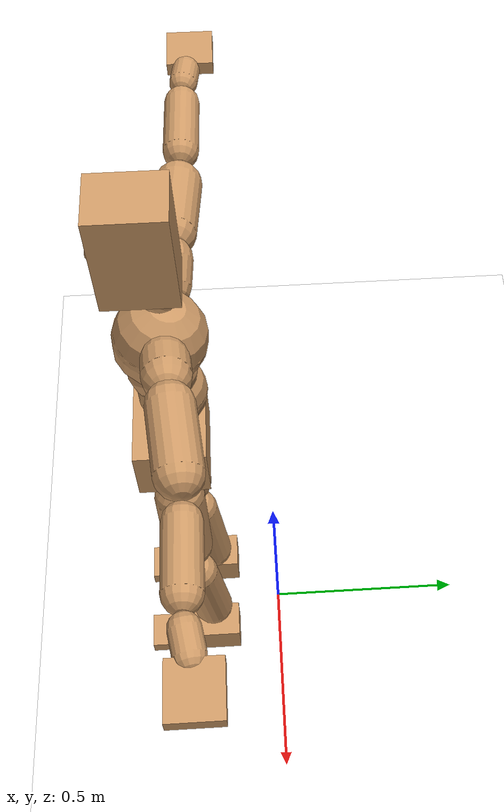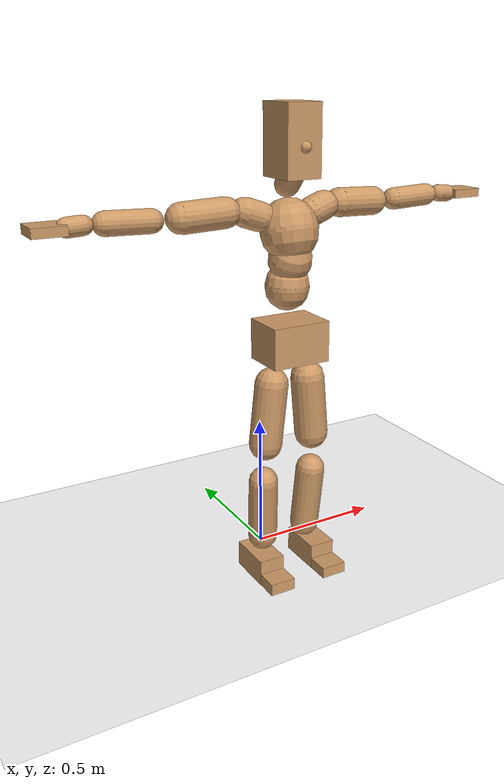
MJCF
<mujoco model="humanoid">
  <option integrator="implicitfast" />

  <visual>
    <global offwidth="1280" offheight="960" />
    <headlight active="1" ambient="0.34 0.34 0.34" diffuse="0.5 0.5 0.5" />
  </visual>

  <default>
    <joint damping="2" stiffness="2" armature="0.01" limited="true" solimplimit="0 .99 .01" />
    <geom condim="1" friction="0.7 0.005 0.0001" solimp=".99 .99 .003" solref="0.015 1" margin="0.001" rgba="0.8 0.6 .4 1" />
    <default class="smplcontact">
      <geom condim="3" friction="1. 0.005 0.0001" solref="0.015 1" solimp="0.98 0.98 0.001" priority="1" />
    </default>
    <default class="stiff_medium">
      <joint stiffness="10" />
    </default>
    <default class="stiff_medium_higher">
      <joint stiffness="50" />
    </default>
    <default class="stiff_high">
      <joint stiffness="100" />
    </default>
  </default>

  <asset>
    <texture type="skybox" builtin="gradient" rgb1="0.99 0.99 0.99" rgb2="0.608 0.828 0.892" width="100" />
    <texture builtin="flat" height="1278" mark="cross" markrgb="1 1 1" name="texgeom" random="0.01" rgb1="0.8 0.6 0.4" rgb2="0.8 0.6 0.4" type="cube" width="127" />
    <texture name="texplane" type="2d" builtin="checker" markrgb="1 1 1" rgb1="0.756 0.772 0.76" rgb2="0.6 0.6 0.6" width="100" height="100" />
    <material name="MatPlane" reflectance="0.5" texture="texplane" texrepeat="1 1" texuniform="true" />
    <material name="geom" texture="texgeom" texuniform="true" />
  </asset>

  <worldbody>
    <light name="tracking_light" pos="0 0 7" dir="0 0 -1" directional="true" cutoff="100" exponent="1" diffuse="1 1 1" specular="0.1 0.1 0.1" mode="trackcom" />
    <camera name="back" pos="0 3 2.4" xyaxes="-1 0 0 0 -1 2" mode="trackcom" />
    <camera name="side" pos="-3 0 2.4" xyaxes="0 -1 0 1 0 2" mode="trackcom" />
    <camera name="front_side" pos="-2.8 -2.8 0.8" xyaxes="0.5 -0.5 0 0.1 0.1 1" mode="trackcom" />
    <geom condim="3" name="floor" pos="0 0 0" rgba="1 1 1 1" size="100 100 .2" type="plane" material="MatPlane" />
    <body name="Pelvis" pos="-0.0018 -0.2233 0.892684" euler="90 0 0">
      <site name="Pelvis" size="0.01" />
      <freejoint name="Pelvis" />
      <geom type="box" pos="-0.0000 -0.0121 -0.0055" size="0.10489 0.0708426 0.0814396" quat="1.0000 0.0000 0.0000 0.0000" density="3165.830099" name="Pelvis" />
      <body name="L_Hip" pos="0.0661988 -0.0870585 -0.006477">
        <joint name="L_Hip_x" type="hinge" pos="0 0 0" axis="1 0 0" stiffness="8.4340866" range="-160.0 22.92" class="stiff_medium" damping="12.356114505369938" armature="0.008045319107284551"/>
        <joint name="L_Hip_y" type="hinge" pos="0 0 0" axis="0 1 0" stiffness="8.4363694" range="-70.0 70.0" class="stiff_medium" damping="8.287729316405043" armature="0.008141708117001087"/>
        <joint name="L_Hip_z" type="hinge" pos="0 0 0" axis="0 0 1" stiffness="8.4359106" range="-28.65 90.0" class="stiff_medium" damping="8.238227068442441" armature="0.008045175968462461"/>
        <geom type="capsule" density="2040.816327" fromto="0.00657225 -0.0714375 -0.00085725 0.0260985 -0.285941 -0.003429" size="0.0591938" name="L_Hip" />
        <body name="L_Knee" pos="0.0326707 -0.357378 -0.00428625">
          <joint name="L_Knee_x" type="hinge" pos="0 0 0" axis="1 0 0" range="-5.16 171.89" damping="6.600538908722502" armature="0.008061896664004807" stiffness="1.6887742000000001"/>
          <joint name="L_Knee_y" type="hinge" pos="0 0 0" axis="0 1 0" range="-4.58 6.88" damping="6.637561315160122" armature="0.008158376957981085" stiffness="1.68757602"/>
          <joint name="L_Knee_z" type="hinge" pos="0 0 0" axis="0 0 1" range="-6.88 4.58" damping="6.601728982443046" armature="0.008061200309060603" stiffness="1.6895291600000002"/>
          <geom type="capsule" density="1234.567901" fromto="-0.00257175 -0.075819 -0.00828675 -0.0103823 -0.303276 -0.0333375" size="0.0520713" name="L_Knee" />
          <body name="L_Ankle" pos="-0.012954 -0.379095 -0.0416243">
            <joint name="L_Ankle_x" type="hinge" pos="0 0 0" axis="1 0 0" range="-45.84 45.84" class="stiff_medium" damping="4.991300063802697" armature="0.008148128866815221" stiffness="8.4931143"/>
            <joint name="L_Ankle_y" type="hinge" pos="0 0 0" axis="0 1 0" range="-74.48 22.92" class="stiff_medium" damping="2.496290999561224" armature="0.008152308597395637" stiffness="8.4931208"/>
            <joint name="L_Ankle_z" type="hinge" pos="0 0 0" axis="0 0 1" range="-4.58 4.58" class="stiff_medium" damping="5.0009599634312565" armature="0.008179683378336884" stiffness="8.493129799999998"/>
            <geom type="box" pos="0.0221933 -0.0227648 0.0230505" size="0.0464888 0.04466 0.0818125" quat="1.0000 0.0000 0.0000 0.0000" density="449.071558" name="L_Ankle" class="smplcontact" />
            <body name="L_Toe" pos="0.025146 -0.0531495 0.113633">
              <joint name="L_Toe_x" type="hinge" pos="0 0 0" axis="1 0 0" range="-91.67 22.92" armature="0.008195542067602996" damping="1.6686018013090576" stiffness="1.6986258799999998"/>
              <joint name="L_Toe_y" type="hinge" pos="0 0 0" axis="0 1 0" range="-4.58 4.58" armature="0.00821471382894358" damping="1.6705521768522544" stiffness="1.6986255599999998"/>
              <joint name="L_Toe_z" type="hinge" pos="0 0 0" axis="0 0 1" range="-4.58 4.58" armature="0.008253479322451348" damping="1.6744884628219805" stiffness="1.6986239999999997"/>
              <geom type="box" pos="-0.0028575 0.00523875 0.023622" size="0.0460075 0.01925 0.04774" quat="1.0000 0.0000 0.0000 0.0000" density="423.206892" name="L_Toe" class="smplcontact" />
            </body>
          </body>
        </body>
      </body>
      <body name="R_Hip" pos="-0.0644842 -0.0862012 -0.00409575">
        <joint name="R_Hip_x" type="hinge" pos="0 0 0" axis="1 0 0" stiffness="8.4340866" range="-160.0 22.92" class="stiff_medium" damping="12.356114505369938" armature="0.008045319107284551"/>
        <joint name="R_Hip_y" type="hinge" pos="0 0 0" axis="0 1 0" stiffness="8.4363694" range="-70.0 70.0" class="stiff_medium" damping="8.287729316405043" armature="0.008141708117001087"/>
        <joint name="R_Hip_z" type="hinge" pos="0 0 0" axis="0 0 1" stiffness="8.4359106" range="-90.0 28.65" class="stiff_medium" damping="8.238227068442441" armature="0.008045175968462461"/>
        <geom type="capsule" density="2040.816327" fromto="-0.00733425 -0.0728662 -0.0017145 -0.0291465 -0.29156 -0.00676275" size="0.0583275" name="R_Hip" />
        <body name="R_Knee" pos="-0.0364807 -0.364426 -0.00847725">
          <joint name="R_Knee_x" type="hinge" pos="0 0 0" axis="1 0 0" range="-5.16 171.89" damping="6.600538908722502" armature="0.008061896664004807" stiffness="1.6887742000000001"/>
          <joint name="R_Knee_y" type="hinge" pos="0 0 0" axis="0 1 0" range="-6.88 4.58" damping="6.637561315160122" armature="0.008158376957981085" stiffness="1.68757602"/>
          <joint name="R_Knee_z" type="hinge" pos="0 0 0" axis="0 0 1" range="-4.58 6.88" damping="6.601728982443046" armature="0.008061200309060603" stiffness="1.6895291600000002"/>
          <geom type="capsule" density="1234.567901" fromto="0.003048 -0.0759142 -0.00809625 0.0120015 -0.303562 -0.0321945" size="0.0520713" name="R_Knee" />
          <body name="R_Ankle" pos="0.0150495 -0.379476 -0.0402908">
            <joint name="R_Ankle_x" type="hinge" pos="0 0 0" axis="1 0 0" range="-45.84 45.84" class="stiff_medium" damping="4.991300063802697" armature="0.008148128866815221" stiffness="8.4931143"/>
            <joint name="R_Ankle_y" type="hinge" pos="0 0 0" axis="0 1 0" range="-22.92 74.48" class="stiff_medium" damping="2.496290999561224" armature="0.008152308597395637" stiffness="8.4931208"/>
            <joint name="R_Ankle_z" type="hinge" pos="0 0 0" axis="0 0 1" range="-4.58 4.58" class="stiff_medium" damping="5.0009599634312565" armature="0.008179683378336884" stiffness="8.493129799999998"/>
            <geom type="box" pos="-0.020193 -0.0165735 0.024384" size="0.0464888 0.0460075 0.0832562" quat="1.0000 0.0000 0.0000 0.0000" density="434.700981" name="R_Ankle" class="smplcontact" />
            <body name="R_Toe" pos="-0.0241935 -0.0458152 0.117443">
              <joint name="R_Toe_x" type="hinge" pos="0 0 0" axis="1 0 0" range="-91.67 22.92" armature="0.008195542067602996" damping="1.6686018013090576" stiffness="1.6986258799999998"/>
              <joint name="R_Toe_y" type="hinge" pos="0 0 0" axis="0 1 0" range="-4.58 4.58" armature="0.00821471382894358" damping="1.6705521768522544" stiffness="1.6986255599999998"/>
              <joint name="R_Toe_z" type="hinge" pos="0 0 0" axis="0 0 1" range="-4.58 4.58" armature="0.008253479322451348" damping="1.6744884628219805" stiffness="1.6986239999999997"/>
              <geom type="box" pos="0.0040005 0.00428625 0.0216218" size="0.0461037 0.02079 0.0474513" quat="1.0000 0.0000 0.0000 0.0000" density="407.384095" name="R_Toe" class="smplcontact" />
            </body>
          </body>
        </body>
      </body>
      <body name="Torso" pos="-0.002422 0.105599 -0.025867">
        <joint name="Torso_x" type="hinge" pos="0 0 0" axis="1 0 0" range="-25.78 57.3" class="stiff_medium" damping="13.872494446854263" armature="0.009200027657435314" stiffness="9.2968852"/>
        <joint name="Torso_y" type="hinge" pos="0 0 0" axis="0 1 0" range="-57.3 57.3" class="stiff_high" damping="17.50582131496185" armature="0.008185325664606393" stiffness="93.59853"/>
        <joint name="Torso_z" type="hinge" pos="0 0 0" axis="0 0 1" range="-34.38 34.38" class="stiff_high" damping="18.134049490190318" armature="0.008850569581965267" stiffness="92.88773673469389"/>
        <geom type="capsule" density="2040.816327" fromto="0.002422 0.058903 0.0004844 0.0029064 0.0719818 0.00058128" size="0.0754543" name="Torso" />
        <body name="Spine" pos="0.0053284 0.130982 0.00106568">
          <joint name="Spine_x" type="hinge" pos="0 0 0" axis="1 0 0" stiffness="9.341418200000001" range="-25.78 57.3" class="stiff_medium" damping="14.092177312663722" armature="0.009448456429193975"/>
          <joint name="Spine_y" type="hinge" pos="0 0 0" axis="0 1 0" stiffness="9.357664599999998" range="-57.3 57.3" class="stiff_high" damping="6.998764318163698" armature="0.00817890735746472"/>
          <joint name="Spine_z" type="hinge" pos="0 0 0" axis="0 0 1" stiffness="18.777371999999996" range="-34.38 34.38" class="stiff_high" damping="10.874341612360176" armature="0.008746587345064121"/>
          <geom type="capsule" density="2040.816327" fromto="0.00067816 0.0230574 0.0110443 0.00077504 0.0281921 0.0135632" size="0.0740806" name="Spine" />
          <body name="Chest" pos="0.0014532 0.0512495 0.0246075">
            <joint name="Chest_x" type="hinge" pos="0 0 0" axis="1 0 0" stiffness="9.46365693877551" range="-25.78 57.3" class="stiff_medium" damping="14.282000640629558" armature="0.009579362096893371"/>
            <joint name="Chest_y" type="hinge" pos="0 0 0" axis="0 1 0" stiffness="9.048901874999999" range="-57.3 57.3" class="stiff_high" damping="6.8791551998397615" armature="0.008171360341079098"/>
            <joint name="Chest_z" type="hinge" pos="0 0 0" axis="0 0 1" stiffness="18.958688000000002" range="-34.38 34.38" class="stiff_high" damping="10.884115087521343" armature="0.008678516123995039"/>
            <geom type="capsule" density="2040.816327" fromto="-0.00087192 0.0660722 -0.0167602 -0.0009688 0.080701 -0.0205386" size="0.0983162" name="Chest" />
            <body name="Neck" pos="-0.00271264 0.207226 -0.0415615">
              <joint name="Neck_x" type="hinge" pos="0 0 0" axis="1 0 0" range="-28.65 57.3" class="stiff_medium_higher" damping="10.630712888705476" armature="0.010734671960729114" stiffness="52.63880300000001"/>
              <joint name="Neck_y" type="hinge" pos="0 0 0" axis="0 1 0" range="-40.11 40.11" class="stiff_medium_higher" damping="10.666035229834442" armature="0.010783691967319056" stiffness="52.748311"/>
              <joint name="Neck_z" type="hinge" pos="0 0 0" axis="0 0 1" range="-40.11 40.11" class="stiff_medium_higher" damping="10.662768622192512" armature="0.010738995716384911" stiffness="52.935413"/>
              <geom type="capsule" density="1000" fromto="0.0009688 0.0125944 0.00997864 0.00397208 0.0503776 0.0398177" size="0.0427803" name="Neck" />
              <body name="Head" pos="0.00523276 0.0654095 0.0516232">
                <joint name="Head_x" type="hinge" pos="0 0 0" axis="1 0 0" range="-28.65 57.3" class="stiff_medium_higher" damping="2.1469139032616615" armature="0.01082861521230282" stiffness="53.206703"/>
                <joint name="Head_y" type="hinge" pos="0 0 0" axis="0 1 0" range="-40.11 40.11" class="stiff_medium_higher" damping="2.1602666047260337" armature="0.010963727428355257" stiffness="53.206720000000004"/>
                <joint name="Head_z" type="hinge" pos="0 0 0" axis="0 0 1" range="-40.11 40.11" class="stiff_medium_higher" damping="2.1462506369569145" armature="0.010821926084116196" stiffness="53.206700000000005"/>
                <geom type="box" pos="-0.00422646 0.0881519 -0.0116731" size="0.0617393 0.11757 0.0774288" quat="1.0000 0.0000 0.0000 0.0000" density="1018.069894" name="Head" />
                <geom type="capsule" name="nose" size="0.020376 0.010188" pos="0 0.070441 0.050315" quat="1 0 0 0" mass="0" contype="0" conaffinity="0" />
              </body>
            </body>
            <body name="L_Thorax" pos="0.0753564 0.116382 -0.0326098">
              <joint name="L_Thorax_x" type="hinge" pos="0 0 0" axis="1 0 0" range="-10.89 4.58" class="stiff_medium_higher" damping="16.661022752210723" armature="0.0081706982835257" stiffness="42.4672515"/>
              <joint name="L_Thorax_y" type="hinge" pos="0 0 0" axis="0 1 0" range="-28.65 17.19" class="stiff_medium_higher" damping="16.613921923367588" armature="0.008125833608296513" stiffness="42.460628500000006"/>
              <joint name="L_Thorax_z" type="hinge" pos="0 0 0" axis="0 0 1" range="-31.51 40.11" class="stiff_medium_higher" damping="16.6139046129572" armature="0.008125793040842768" stiffness="42.460752"/>
              <geom type="capsule" density="1000" fromto="0.0174047 0.00583343 -0.00172134 0.0696186 0.0233337 -0.00678973" size="0.0501463" name="L_Thorax" />
              <body name="L_Shoulder" pos="0.0870233 0.0291671 -0.00851107">
                <joint name="L_Shoulder_x" type="hinge" pos="0 0 0" axis="1 0 0" range="-97.4 97.4" class="stiff_medium" damping="5.003905655075881" armature="0.008188364639527582" stiffness="8.494123100000001"/>
                <joint name="L_Shoulder_y" type="hinge" pos="0 0 0" axis="0 1 0" range="-108.86 80.21" class="stiff_medium" damping="4.984855692442509" armature="0.008127449096473073" stiffness="8.492751599999998"/>
                <joint name="L_Shoulder_z" type="hinge" pos="0 0 0" axis="0 0 1" range="-97.4 85.94" class="stiff_medium" damping="4.984827776241941" armature="0.0081273967280166" stiffness="8.4927112"/>
                <geom type="capsule" density="1000" fromto="0.049632 -0.00248638 -0.00525965 0.198624 -0.00975426 -0.0210386" size="0.0497613" name="L_Shoulder" />
                <body name="L_Elbow" pos="0.248255 -0.0122406 -0.0262983">
                  <joint name="L_Elbow_x" type="hinge" pos="0 0 0" axis="1 0 0" range="-17.19 4.58" damping="4.178116076155648" armature="0.008216413497749554" stiffness="1.69968602"/>
                  <joint name="L_Elbow_y" type="hinge" pos="0 0 0" axis="0 1 0" range="-180.0 17.19" damping="4.1574498651536524" armature="0.008135342992313391" stiffness="1.6996839000000001"/>
                  <joint name="L_Elbow_z" type="hinge" pos="0 0 0" axis="0 0 1" range="-100.84 4.58" damping="4.157416505383548" armature="0.008135068848580012" stiffness="1.6997138999999999"/>
                  <geom type="capsule" density="1000" fromto="0.0476237 0.00172134 -0.00019126 0.190686 0.00688536 -0.00086067" size="0.0389813" name="L_Elbow" />
                  <body name="L_Wrist" pos="0.23831 0.0086067 -0.00114756">
                    <joint name="L_Wrist_x" type="hinge" pos="0 0 0" axis="1 0 0" range="-180.0 22.92" armature="0.008224348576593515" damping="1.6738861642260372" stiffness="1.7034144799999997"/>
                    <joint name="L_Wrist_y" type="hinge" pos="0 0 0" axis="0 1 0" range="-17.19 17.19" armature="0.008161950649460155" damping="1.667383500398282" stiffness="1.7031270199999997"/>
                    <joint name="L_Wrist_z" type="hinge" pos="0 0 0" axis="0 0 1" range="-22.92 22.92" armature="0.008158476475866303" damping="1.667073905970243" stiffness="1.7032196000000002"/>
                    <geom type="capsule" density="1000" fromto="0.0160658 -0.00153008 -0.0028689 0.0642634 -0.00621595 -0.0114756" size="0.0306075" name="L_Wrist" class="smplcontact" />
                    <body name="L_Hand" pos="0.0803292 -0.00784166 -0.0142489">
                      <joint name="L_Hand_x" type="hinge" pos="0 0 0" axis="1 0 0" range="-17.19 17.19" armature="0.00825583573912905" damping="1.6780658739066683" stiffness="1.7054028"/>
                      <joint name="L_Hand_y" type="hinge" pos="0 0 0" axis="0 1 0" range="-51.57 51.57" armature="0.008204576061488486" damping="1.6728483183092244" stiffness="1.70540286"/>
                      <joint name="L_Hand_z" type="hinge" pos="0 0 0" axis="0 0 1" range="-91.67 91.67" armature="0.008190912192581713" damping="1.6714548289418671" stiffness="1.7054030000000002"/>
                      <geom type="box" pos="0.0471456 0.0009563 -0.00554654" size="0.0563063 0.0152075 0.0517825" quat="1.0000 0.0000 0.0000 0.0000" density="400.552564" name="L_Hand" class="smplcontact" />
                    </body>
                  </body>
                </body>
              </body>
            </body>
            <body name="R_Thorax" pos="-0.0782253 0.113608 -0.0369132">
              <joint name="R_Thorax_x" type="hinge" pos="0 0 0" axis="1 0 0" range="-10.89 4.58" class="stiff_medium_higher" damping="16.661022752210723" armature="0.0081706982835257" stiffness="42.4672515"/>
              <joint name="R_Thorax_y" type="hinge" pos="0 0 0" axis="0 1 0" range="-17.19 28.65" class="stiff_medium_higher" damping="16.613921923367588" armature="0.008125833608296513" stiffness="42.460628500000006"/>
              <joint name="R_Thorax_z" type="hinge" pos="0 0 0" axis="0 0 1" range="-40.11 31.51" class="stiff_medium_higher" damping="16.6139046129572" armature="0.008125793040842768" stiffness="42.460752"/>
              <geom type="capsule" density="1000" fromto="-0.018361 0.00621595 -0.00172134 -0.0734438 0.0248638 -0.00698099" size="0.0491837" name="R_Thorax" />
              <body name="R_Shoulder" pos="-0.0918048 0.0311754 -0.00870233">
                <joint name="R_Shoulder_x" type="hinge" pos="0 0 0" axis="1 0 0" range="-97.4 97.4" class="stiff_medium" damping="5.003905655075881" armature="0.008188364639527582" stiffness="8.494123100000001"/>
                <joint name="R_Shoulder_y" type="hinge" pos="0 0 0" axis="0 1 0" range="-80.21 108.86" class="stiff_medium" damping="4.984855692442509" armature="0.008127449096473073" stiffness="8.492751599999998"/>
                <joint name="R_Shoulder_z" type="hinge" pos="0 0 0" axis="0 0 1" range="-85.94 97.4" class="stiff_medium" damping="4.984827776241941" armature="0.0081273967280166" stiffness="8.4927112"/>
                <geom type="capsule" density="1000" fromto="-0.0484844 -0.00258201 -0.00411209 -0.194129 -0.0102324 -0.0163527" size="0.0511088" name="R_Shoulder" />
                <body name="R_Elbow" pos="-0.242613 -0.0127188 -0.0204648">
                  <joint name="R_Elbow_x" type="hinge" pos="0 0 0" axis="1 0 0" range="-17.19 4.58" damping="4.178116076155648" armature="0.008216413497749554" stiffness="1.69968602"/>
                  <joint name="R_Elbow_y" type="hinge" pos="0 0 0" axis="0 1 0" range="-17.19 180.0" damping="4.1574498651536524" armature="0.008135342992313391" stiffness="1.6996839000000001"/>
                  <joint name="R_Elbow_z" type="hinge" pos="0 0 0" axis="0 0 1" range="-4.58 100.84" damping="4.157416505383548" armature="0.008135068848580012" stiffness="1.6997138999999999"/>
                  <geom type="capsule" density="1000" fromto="-0.0488669 0.00153008 -0.00105193 -0.195276 0.00592906 -0.00420772" size="0.03927" name="R_Elbow" />
                  <body name="R_Wrist" pos="-0.244143 0.00745914 -0.00535528">
                    <joint name="R_Wrist_x" type="hinge" pos="0 0 0" axis="1 0 0" range="-180.0 22.92" armature="0.008224348576593515" damping="1.6738861642260372" stiffness="1.7034144799999997"/>
                    <joint name="R_Wrist_y" type="hinge" pos="0 0 0" axis="0 1 0" range="-17.19 17.19" armature="0.008161950649460155" damping="1.667383500398282" stiffness="1.7031270199999997"/>
                    <joint name="R_Wrist_z" type="hinge" pos="0 0 0" axis="0 0 1" range="-22.92 22.92" armature="0.008158476475866303" damping="1.667073905970243" stiffness="1.7032196000000002"/>
                    <geom type="capsule" density="1000" fromto="-0.0161615 -0.00114756 -0.00200823 -0.0647415 -0.00468587 -0.00793729" size="0.0313775" name="R_Wrist" class="smplcontact" />
                    <body name="R_Hand" pos="-0.080903 -0.00583343 -0.00984989">
                      <joint name="R_Hand_x" type="hinge" pos="0 0 0" axis="1 0 0" range="-17.19 17.19" armature="0.00825583573912905" damping="1.6780658739066683" stiffness="1.7054028"/>
                      <joint name="R_Hand_y" type="hinge" pos="0 0 0" axis="0 1 0" range="-51.57 51.57" armature="0.008204576061488486" damping="1.6728483183092244" stiffness="1.70540286"/>
                      <joint name="R_Hand_z" type="hinge" pos="0 0 0" axis="0 0 1" range="-91.67 91.67" armature="0.008190912192581713" damping="1.6714548289418671" stiffness="1.7054030000000002"/>
                      <geom type="box" pos="-0.0441811 -0.00086067 -0.00755477" size="0.0547663 0.015785 0.0525525" quat="1.0000 0.0000 0.0000 0.0000" density="403.679611" name="R_Hand" class="smplcontact" />
                    </body>
                  </body>
                </body>
              </body>
            </body>
          </body>
        </body>
      </body>
    </body>
  </worldbody>
  <actuator>
    <general name="L_Hip_x" joint="L_Hip_x" biastype="affine" gainprm="242.33666433803688" biasprm="-181.60676769876503 -151.81355880000004 -1.647481934049325" ctrllimited="true" ctrlrange="-1 1" forcerange="-303.6271176000001 303.6271176000001" />
    <general name="L_Hip_y" joint="L_Hip_y" biastype="affine" gainprm="185.5254529100681" biasprm="0.0 -151.8546492 -1.6575458632810085" ctrllimited="true" ctrlrange="-1 1" forcerange="-303.7092984 303.7092984" />
    <general name="L_Hip_z" joint="L_Hip_z" biastype="affine" gainprm="157.22427045700883" biasprm="81.29548244869356 -151.84639080000002 -1.6476454136884884" ctrllimited="true" ctrlrange="-1 1" forcerange="-303.69278160000005 303.69278160000005" />
    <general name="L_Knee_x" joint="L_Knee_x" biastype="affine" gainprm="234.83206545567378" biasprm="221.14402865532045 -151.989678 -1.6501347271806255" ctrllimited="true" ctrlrange="-1 1" forcerange="-303.979356 303.979356" />
    <general name="L_Knee_y" joint="L_Knee_y" biastype="affine" gainprm="15.189302962800054" biasprm="3.0484639454136238 -151.88184180000002 -1.6593903287900305" ctrllimited="true" ctrlrange="-1 1" forcerange="-303.76368360000004 303.76368360000004" />
    <general name="L_Knee_z" joint="L_Knee_z" biastype="affine" gainprm="15.206882517639169" biasprm="-3.0519921283219973 -152.0576244 -1.6504322456107614" ctrllimited="true" ctrlrange="-1 1" forcerange="-304.1152488 304.1152488" />
    <general name="L_Ankle_x" joint="L_Ankle_x" biastype="affine" gainprm="61.154927385322544" biasprm="0.0 -76.4380287 -1.6637666879342325" ctrllimited="true" ctrlrange="-1 1" forcerange="-152.8760574 152.8760574" />
    <general name="L_Ankle_y" joint="L_Ankle_y" biastype="affine" gainprm="64.97048959409018" biasprm="-34.39300249970524 -76.4380872 -1.6641939997074826" ctrllimited="true" ctrlrange="-1 1" forcerange="-152.8761744 152.8761744" />
    <general name="L_Ankle_z" joint="L_Ankle_z" biastype="affine" gainprm="6.11016750851718" biasprm="0.0 -76.43816819999999 -1.6669866544770855" ctrllimited="true" ctrlrange="-1 1" forcerange="-152.87633639999999 152.87633639999999" />
    <general name="L_Toe_x" joint="L_Toe_x" biastype="affine" gainprm="61.14969972274518" biasprm="-36.68768527741279 -61.15053167999999 -0.667440720523623" ctrllimited="true" ctrlrange="-1 1" forcerange="-122.30106335999999 122.30106335999999" />
    <general name="L_Toe_y" joint="L_Toe_y" biastype="affine" gainprm="4.888132855734196" biasprm="0.0 -61.15052015999999 -0.6682208707409019" ctrllimited="true" ctrlrange="-1 1" forcerange="-122.30104031999998 122.30104031999998" />
    <general name="L_Toe_z" joint="L_Toe_z" biastype="affine" gainprm="4.888128366523958" biasprm="0.0 -61.150463999999985 -0.6697953851287922" ctrllimited="true" ctrlrange="-1 1" forcerange="-122.30092799999997 122.30092799999997" />
    <general name="R_Hip_x" joint="R_Hip_x" biastype="affine" gainprm="242.33666433803688" biasprm="-181.60676769876503 -151.81355880000004 -1.647481934049325" ctrllimited="true" ctrlrange="-1 1" forcerange="-303.6271176000001 303.6271176000001" />
    <general name="R_Hip_y" joint="R_Hip_y" biastype="affine" gainprm="185.5254529100681" biasprm="0.0 -151.8546492 -1.6575458632810085" ctrllimited="true" ctrlrange="-1 1" forcerange="-303.7092984 303.7092984" />
    <general name="R_Hip_z" joint="R_Hip_z" biastype="affine" gainprm="157.22427045700883" biasprm="-81.29548244869356 -151.84639080000002 -1.6476454136884884" ctrllimited="true" ctrlrange="-1 1" forcerange="-303.69278160000005 303.69278160000005" />
    <general name="R_Knee_x" joint="R_Knee_x" biastype="affine" gainprm="234.83206545567378" biasprm="221.14402865532045 -151.989678 -1.6501347271806255" ctrllimited="true" ctrlrange="-1 1" forcerange="-303.979356 303.979356" />
    <general name="R_Knee_y" joint="R_Knee_y" biastype="affine" gainprm="15.189302962800054" biasprm="-3.0484639454136238 -151.88184180000002 -1.6593903287900305" ctrllimited="true" ctrlrange="-1 1" forcerange="-303.76368360000004 303.76368360000004" />
    <general name="R_Knee_z" joint="R_Knee_z" biastype="affine" gainprm="15.206882517639169" biasprm="3.0519921283219973 -152.0576244 -1.6504322456107614" ctrllimited="true" ctrlrange="-1 1" forcerange="-304.1152488 304.1152488" />
    <general name="R_Ankle_x" joint="R_Ankle_x" biastype="affine" gainprm="61.154927385322544" biasprm="0.0 -76.4380287 -1.6637666879342325" ctrllimited="true" ctrlrange="-1 1" forcerange="-152.8760574 152.8760574" />
    <general name="R_Ankle_y" joint="R_Ankle_y" biastype="affine" gainprm="64.97048959409018" biasprm="34.39300249970524 -76.4380872 -1.6641939997074826" ctrllimited="true" ctrlrange="-1 1" forcerange="-152.8761744 152.8761744" />
    <general name="R_Ankle_z" joint="R_Ankle_z" biastype="affine" gainprm="6.11016750851718" biasprm="0.0 -76.43816819999999 -1.6669866544770855" ctrllimited="true" ctrlrange="-1 1" forcerange="-152.87633639999999 152.87633639999999" />
    <general name="R_Toe_x" joint="R_Toe_x" biastype="affine" gainprm="61.14969972274518" biasprm="-36.68768527741279 -61.15053167999999 -0.667440720523623" ctrllimited="true" ctrlrange="-1 1" forcerange="-122.30106335999999 122.30106335999999" />
    <general name="R_Toe_y" joint="R_Toe_y" biastype="affine" gainprm="4.888132855734196" biasprm="0.0 -61.15052015999999 -0.6682208707409019" ctrllimited="true" ctrlrange="-1 1" forcerange="-122.30104031999998 122.30104031999998" />
    <general name="R_Toe_z" joint="R_Toe_z" biastype="affine" gainprm="4.888128366523958" biasprm="0.0 -61.150463999999985 -0.6697953851287922" ctrllimited="true" ctrlrange="-1 1" forcerange="-122.30092799999997 122.30092799999997" />
    <general name="Torso_x" joint="Torso_x" biastype="affine" gainprm="161.76798269889494" biasprm="61.37369781739489 -223.12524480000002 -3.69933185249447" ctrllimited="true" ctrlrange="-1 1" forcerange="-334.6878672 334.6878672" />
    <general name="Torso_y" joint="Torso_y" biastype="affine" gainprm="224.65301903539014" biasprm="0.0 -224.636472 -3.50116426299237" ctrllimited="true" ctrlrange="-1 1" forcerange="-336.954708 336.954708" />
    <general name="Torso_z" joint="Torso_z" biastype="affine" gainprm="133.7681937236418" biasprm="0.0 -222.93056816326532 -3.6268098980380636" ctrllimited="true" ctrlrange="-1 1" forcerange="-334.395852244898 334.395852244898" />
    <general name="Spine_x" joint="Spine_x" biastype="affine" gainprm="162.5428673423592" biasprm="61.66768390263795 -224.19403680000002 -3.757913950043659" ctrllimited="true" ctrlrange="-1 1" forcerange="-336.2910552 336.2910552" />
    <general name="Spine_y" joint="Spine_y" biastype="affine" gainprm="224.6004935665759" biasprm="0.0 -224.58395039999996 -3.499382159081849" ctrllimited="true" ctrlrange="-1 1" forcerange="-336.87592559999996 336.87592559999996" />
    <general name="Spine_z" joint="Spine_z" biastype="affine" gainprm="135.20703720509078" biasprm="0.0 -225.32846399999997 -3.6247805374533923" ctrllimited="true" ctrlrange="-1 1" forcerange="-337.99269599999997 337.99269599999997" />
    <general name="Chest_x" joint="Chest_x" biastype="affine" gainprm="164.66985006334312" biasprm="62.474647014884134 -227.12776653061223 -3.8085335041678823" ctrllimited="true" ctrlrange="-1 1" forcerange="-340.69164979591835 340.69164979591835" />
    <general name="Chest_y" joint="Chest_y" biastype="affine" gainprm="217.18964231315945" biasprm="0.0 -217.173645 -3.4395775999198808" ctrllimited="true" ctrlrange="-1 1" forcerange="-325.7604675 325.7604675" />
    <general name="Chest_z" joint="Chest_z" biastype="affine" gainprm="136.51260856821227" biasprm="0.0 -227.50425600000005 -3.628038362507114" ctrllimited="true" ctrlrange="-1 1" forcerange="-341.2563840000001 341.2563840000001" />
    <general name="Neck_x" joint="Neck_x" biastype="affine" gainprm="28.42704744167253" biasprm="9.475682480557511 -37.899938160000005 -0.8504570310964381" ctrllimited="true" ctrlrange="-1 1" forcerange="-75.79987632000001 75.79987632000001" />
    <general name="Neck_y" joint="Neck_y" biastype="affine" gainprm="26.58710704308297" biasprm="0.0 -37.978783920000005 -0.8532828183867555" ctrllimited="true" ctrlrange="-1 1" forcerange="-75.95756784000001 75.95756784000001" />
    <general name="Neck_z" joint="Neck_z" biastype="affine" gainprm="26.6814133973087" biasprm="0.0 -38.11349736 -0.8530214897754012" ctrllimited="true" ctrlrange="-1 1" forcerange="-76.22699472 76.22699472" />
    <general name="Head_x" joint="Head_x" biastype="affine" gainprm="19.155824020744795" biasprm="6.385274673581598 -25.53921744 -0.8587655613046646" ctrllimited="true" ctrlrange="-1 1" forcerange="-51.07843488 51.07843488" />
    <general name="Head_y" joint="Head_y" biastype="affine" gainprm="17.878774798449232" biasprm="0.0 -25.5392256 -0.8641066418904135" ctrllimited="true" ctrlrange="-1 1" forcerange="-51.0784512 51.0784512" />
    <general name="Head_z" joint="Head_z" biastype="affine" gainprm="17.878768077954227" biasprm="0.0 -25.539216000000003 -0.8585002547827658" ctrllimited="true" ctrlrange="-1 1" forcerange="-51.07843200000001 51.07843200000001" />
    <general name="L_Thorax_x" joint="L_Thorax_x" biastype="affine" gainprm="13.759513589757402" biasprm="-5.612316144238477 -101.9214036 -1.332881820176858" ctrllimited="true" ctrlrange="-1 1" forcerange="-203.8428072 203.8428072" />
    <general name="L_Thorax_y" joint="L_Thorax_y" biastype="affine" gainprm="40.76520596067109" biasprm="-10.191301490167772 -101.9055084 -1.3291137538694073" ctrllimited="true" ctrlrange="-1 1" forcerange="-203.8110168 203.8110168" />
    <general name="L_Thorax_z" joint="L_Thorax_z" biastype="affine" gainprm="63.69137309764272" biasprm="7.647944828814959 -101.9058048 -1.329112369036576" ctrllimited="true" ctrlrange="-1 1" forcerange="-203.8116096 203.8116096" />
    <general name="L_Shoulder_x" joint="L_Shoulder_x" biastype="affine" gainprm="69.31003409780409" biasprm="0.0 -40.771790880000005 -1.3343748413535685" ctrllimited="true" ctrlrange="-1 1" forcerange="-81.54358176000001 81.54358176000001" />
    <general name="L_Shoulder_y" joint="L_Shoulder_y" biastype="affine" gainprm="67.26043245731348" biasprm="-10.19205262549337 -40.765207679999996 -1.3292948513180025" ctrllimited="true" ctrlrange="-1 1" forcerange="-81.53041535999999 81.53041535999999" />
    <general name="L_Shoulder_z" joint="L_Shoulder_z" biastype="affine" gainprm="65.22171167120518" biasprm="-4.076801656768916 -40.76501376 -1.329287406997851" ctrllimited="true" ctrlrange="-1 1" forcerange="-81.53002752 81.53002752" />
    <general name="L_Elbow_x" joint="L_Elbow_x" biastype="affine" gainprm="11.624572864832453" biasprm="-6.733388324553848 -61.188696719999996 -0.6684985721849038" ctrllimited="true" ctrlrange="-1 1" forcerange="-122.37739343999999 122.37739343999999" />
    <general name="L_Elbow_y" joint="L_Elbow_y" biastype="affine" gainprm="105.29382931181715" biasprm="-86.93589102011741 -61.188620400000005 -0.6651919784245844" ctrllimited="true" ctrlrange="-1 1" forcerange="-122.37724080000001 122.37724080000001" />
    <general name="L_Elbow_z" joint="L_Elbow_z" biastype="affine" gainprm="56.29226333062745" biasprm="-51.400998560104334 -61.18970039999999 -0.6651866408613677" ctrllimited="true" ctrlrange="-1 1" forcerange="-122.37940079999998 122.37940079999998" />
    <general name="L_Wrist_x" joint="L_Wrist_x" biastype="affine" gainprm="18.098551196219063" biasprm="-14.010055302099795 -10.22048688 -0.6695544656904149" ctrllimited="true" ctrlrange="-1 1" forcerange="-20.44097376 20.44097376" />
    <general name="L_Wrist_y" joint="L_Wrist_y" biastype="affine" gainprm="3.0658544544749846" biasprm="0.0 -10.218762119999997 -0.6669534001593128" ctrllimited="true" ctrlrange="-1 1" forcerange="-20.437524239999995 20.437524239999995" />
    <general name="L_Wrist_z" joint="L_Wrist_z" biastype="affine" gainprm="4.088028147666953" biasprm="0.0 -10.2193176 -0.6668295623880973" ctrllimited="true" ctrlrange="-1 1" forcerange="-20.4386352 20.4386352" />
    <general name="L_Hand_x" joint="L_Hand_x" biastype="affine" gainprm="3.0699511602218092" biasprm="0.0 -10.232416800000001 -0.6712263495626674" ctrllimited="true" ctrlrange="-1 1" forcerange="-20.464833600000002 20.464833600000002" />
    <general name="L_Hand_y" joint="L_Hand_y" biastype="affine" gainprm="9.209853804689292" biasprm="0.0 -10.23241716 -0.6691393273236899" ctrllimited="true" ctrlrange="-1 1" forcerange="-20.46483432 20.46483432" />
    <general name="L_Hand_z" joint="L_Hand_z" biastype="affine" gainprm="16.37128888081234" biasprm="0.0 -10.232418000000001 -0.668581931576747" ctrllimited="true" ctrlrange="-1 1" forcerange="-20.464836000000002 20.464836000000002" />
    <general name="R_Thorax_x" joint="R_Thorax_x" biastype="affine" gainprm="13.759513589757402" biasprm="-5.612316144238477 -101.9214036 -1.332881820176858" ctrllimited="true" ctrlrange="-1 1" forcerange="-203.8428072 203.8428072" />
    <general name="R_Thorax_y" joint="R_Thorax_y" biastype="affine" gainprm="40.76520596067109" biasprm="10.191301490167767 -101.9055084 -1.3291137538694073" ctrllimited="true" ctrlrange="-1 1" forcerange="-203.8110168 203.8110168" />
    <general name="R_Thorax_z" joint="R_Thorax_z" biastype="affine" gainprm="63.69137309764272" biasprm="-7.647944828814959 -101.9058048 -1.329112369036576" ctrllimited="true" ctrlrange="-1 1" forcerange="-203.8116096 203.8116096" />
    <general name="R_Shoulder_x" joint="R_Shoulder_x" biastype="affine" gainprm="69.31003409780409" biasprm="0.0 -40.771790880000005 -1.3343748413535685" ctrllimited="true" ctrlrange="-1 1" forcerange="-81.54358176000001 81.54358176000001" />
    <general name="R_Shoulder_y" joint="R_Shoulder_y" biastype="affine" gainprm="67.26043245731348" biasprm="10.19205262549337 -40.765207679999996 -1.3292948513180025" ctrllimited="true" ctrlrange="-1 1" forcerange="-81.53041535999999 81.53041535999999" />
    <general name="R_Shoulder_z" joint="R_Shoulder_z" biastype="affine" gainprm="65.22171167120518" biasprm="4.0768016567689065 -40.76501376 -1.329287406997851" ctrllimited="true" ctrlrange="-1 1" forcerange="-81.53002752 81.53002752" />
    <general name="R_Elbow_x" joint="R_Elbow_x" biastype="affine" gainprm="11.624572864832453" biasprm="-6.733388324553848 -61.188696719999996 -0.6684985721849038" ctrllimited="true" ctrlrange="-1 1" forcerange="-122.37739343999999 122.37739343999999" />
    <general name="R_Elbow_y" joint="R_Elbow_y" biastype="affine" gainprm="105.29382931181715" biasprm="86.93589102011741 -61.188620400000005 -0.6651919784245844" ctrllimited="true" ctrlrange="-1 1" forcerange="-122.37724080000001 122.37724080000001" />
    <general name="R_Elbow_z" joint="R_Elbow_z" biastype="affine" gainprm="56.29226333062745" biasprm="51.40099856010433 -61.18970039999999 -0.6651866408613677" ctrllimited="true" ctrlrange="-1 1" forcerange="-122.37940079999998 122.37940079999998" />
    <general name="R_Wrist_x" joint="R_Wrist_x" biastype="affine" gainprm="18.098551196219063" biasprm="-14.010055302099795 -10.22048688 -0.6695544656904149" ctrllimited="true" ctrlrange="-1 1" forcerange="-20.44097376 20.44097376" />
    <general name="R_Wrist_y" joint="R_Wrist_y" biastype="affine" gainprm="3.0658544544749846" biasprm="0.0 -10.218762119999997 -0.6669534001593128" ctrllimited="true" ctrlrange="-1 1" forcerange="-20.437524239999995 20.437524239999995" />
    <general name="R_Wrist_z" joint="R_Wrist_z" biastype="affine" gainprm="4.088028147666953" biasprm="0.0 -10.2193176 -0.6668295623880973" ctrllimited="true" ctrlrange="-1 1" forcerange="-20.4386352 20.4386352" />
    <general name="R_Hand_x" joint="R_Hand_x" biastype="affine" gainprm="3.0699511602218092" biasprm="0.0 -10.232416800000001 -0.6712263495626674" ctrllimited="true" ctrlrange="-1 1" forcerange="-20.464833600000002 20.464833600000002" />
    <general name="R_Hand_y" joint="R_Hand_y" biastype="affine" gainprm="9.209853804689292" biasprm="0.0 -10.23241716 -0.6691393273236899" ctrllimited="true" ctrlrange="-1 1" forcerange="-20.46483432 20.46483432" />
    <general name="R_Hand_z" joint="R_Hand_z" biastype="affine" gainprm="16.37128888081234" biasprm="0.0 -10.232418000000001 -0.668581931576747" ctrllimited="true" ctrlrange="-1 1" forcerange="-20.464836000000002 20.464836000000002" />
  </actuator>
  <contact>
    <exclude body1="Torso" body2="Chest" />
    <exclude body1="Head" body2="Chest" />
    <exclude body1="R_Knee" body2="R_Toe" />
    <exclude body1="R_Knee" body2="L_Ankle" />
    <exclude body1="R_Knee" body2="L_Toe" />
    <exclude body1="L_Knee" body2="L_Toe" />
    <exclude body1="L_Knee" body2="R_Ankle" />
    <exclude body1="L_Knee" body2="R_Toe" />
    <exclude body1="L_Shoulder" body2="Chest" />
    <exclude body1="R_Shoulder" body2="Chest" />
  </contact>
  <sensor>
    <framelinvel name="sensor_Pelvis_framelinvel" objtype="xbody" objname="Pelvis" />
    <framelinvel name="sensor_L_Hip_framelinvel" objtype="xbody" objname="L_Hip" />
    <framelinvel name="sensor_L_Knee_framelinvel" objtype="xbody" objname="L_Knee" />
    <framelinvel name="sensor_L_Ankle_framelinvel" objtype="xbody" objname="L_Ankle" />
    <framelinvel name="sensor_L_Toe_framelinvel" objtype="xbody" objname="L_Toe" />
    <framelinvel name="sensor_R_Hip_framelinvel" objtype="xbody" objname="R_Hip" />
    <framelinvel name="sensor_R_Knee_framelinvel" objtype="xbody" objname="R_Knee" />
    <framelinvel name="sensor_R_Ankle_framelinvel" objtype="xbody" objname="R_Ankle" />
    <framelinvel name="sensor_R_Toe_framelinvel" objtype="xbody" objname="R_Toe" />
    <framelinvel name="sensor_Torso_framelinvel" objtype="xbody" objname="Torso" />
    <framelinvel name="sensor_Spine_framelinvel" objtype="xbody" objname="Spine" />
    <framelinvel name="sensor_Chest_framelinvel" objtype="xbody" objname="Chest" />
    <framelinvel name="sensor_Neck_framelinvel" objtype="xbody" objname="Neck" />
    <framelinvel name="sensor_Head_framelinvel" objtype="xbody" objname="Head" />
    <framelinvel name="sensor_L_Thorax_framelinvel" objtype="xbody" objname="L_Thorax" />
    <framelinvel name="sensor_L_Shoulder_framelinvel" objtype="xbody" objname="L_Shoulder" />
    <framelinvel name="sensor_L_Elbow_framelinvel" objtype="xbody" objname="L_Elbow" />
    <framelinvel name="sensor_L_Wrist_framelinvel" objtype="xbody" objname="L_Wrist" />
    <framelinvel name="sensor_L_Hand_framelinvel" objtype="xbody" objname="L_Hand" />
    <framelinvel name="sensor_R_Thorax_framelinvel" objtype="xbody" objname="R_Thorax" />
    <framelinvel name="sensor_R_Shoulder_framelinvel" objtype="xbody" objname="R_Shoulder" />
    <framelinvel name="sensor_R_Elbow_framelinvel" objtype="xbody" objname="R_Elbow" />
    <framelinvel name="sensor_R_Wrist_framelinvel" objtype="xbody" objname="R_Wrist" />
    <framelinvel name="sensor_R_Hand_framelinvel" objtype="xbody" objname="R_Hand" />
    <frameangvel name="sensor_Pelvis_frameangvel" objtype="xbody" objname="Pelvis" />
    <frameangvel name="sensor_L_Hip_frameangvel" objtype="xbody" objname="L_Hip" />
    <frameangvel name="sensor_L_Knee_frameangvel" objtype="xbody" objname="L_Knee" />
    <frameangvel name="sensor_L_Ankle_frameangvel" objtype="xbody" objname="L_Ankle" />
    <frameangvel name="sensor_L_Toe_frameangvel" objtype="xbody" objname="L_Toe" />
    <frameangvel name="sensor_R_Hip_frameangvel" objtype="xbody" objname="R_Hip" />
    <frameangvel name="sensor_R_Knee_frameangvel" objtype="xbody" objname="R_Knee" />
    <frameangvel name="sensor_R_Ankle_frameangvel" objtype="xbody" objname="R_Ankle" />
    <frameangvel name="sensor_R_Toe_frameangvel" objtype="xbody" objname="R_Toe" />
    <frameangvel name="sensor_Torso_frameangvel" objtype="xbody" objname="Torso" />
    <frameangvel name="sensor_Spine_frameangvel" objtype="xbody" objname="Spine" />
    <frameangvel name="sensor_Chest_frameangvel" objtype="xbody" objname="Chest" />
    <frameangvel name="sensor_Neck_frameangvel" objtype="xbody" objname="Neck" />
    <frameangvel name="sensor_Head_frameangvel" objtype="xbody" objname="Head" />
    <frameangvel name="sensor_L_Thorax_frameangvel" objtype="xbody" objname="L_Thorax" />
    <frameangvel name="sensor_L_Shoulder_frameangvel" objtype="xbody" objname="L_Shoulder" />
    <frameangvel name="sensor_L_Elbow_frameangvel" objtype="xbody" objname="L_Elbow" />
    <frameangvel name="sensor_L_Wrist_frameangvel" objtype="xbody" objname="L_Wrist" />
    <frameangvel name="sensor_L_Hand_frameangvel" objtype="xbody" objname="L_Hand" />
    <frameangvel name="sensor_R_Thorax_frameangvel" objtype="xbody" objname="R_Thorax" />
    <frameangvel name="sensor_R_Shoulder_frameangvel" objtype="xbody" objname="R_Shoulder" />
    <frameangvel name="sensor_R_Elbow_frameangvel" objtype="xbody" objname="R_Elbow" />
    <frameangvel name="sensor_R_Wrist_frameangvel" objtype="xbody" objname="R_Wrist" />
    <frameangvel name="sensor_R_Hand_frameangvel" objtype="xbody" objname="R_Hand" />
    <subtreelinvel name="Chest_subtreelinvel" body="Chest" />
    <gyro name="Pelvis_gyro" site="Pelvis" />
  </sensor>
</mujoco>
